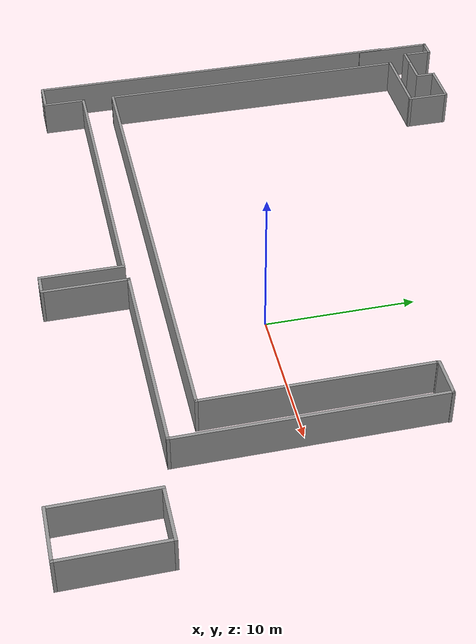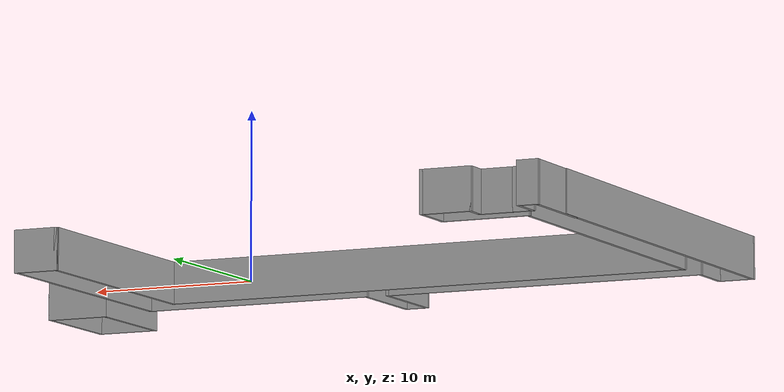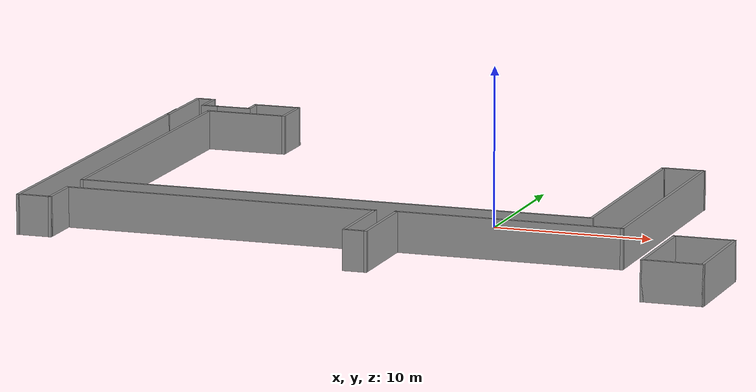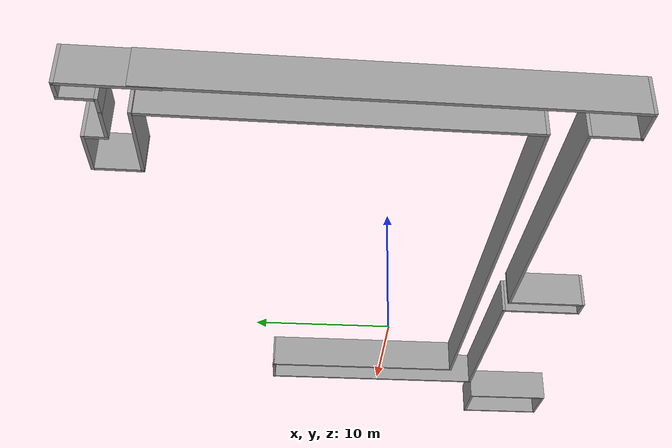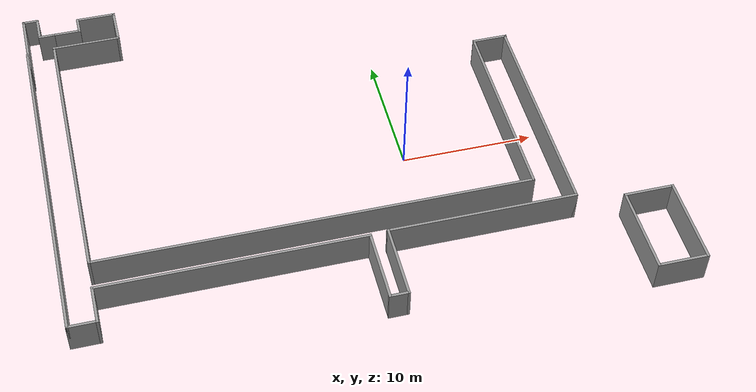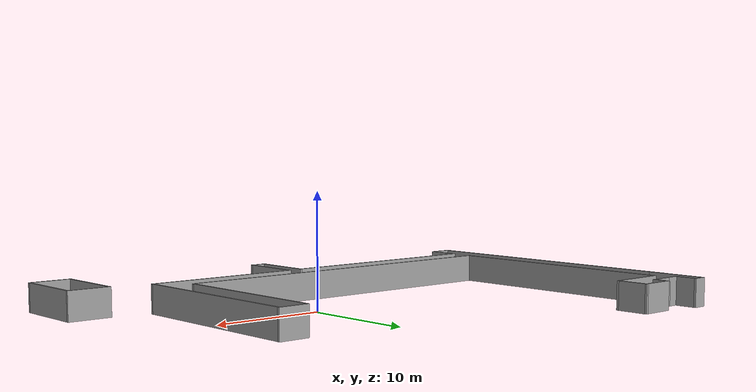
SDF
<?xml version='1.0'?>
<sdf version='1.4'>
  <model name='ESAT_V0.01'>
    <link name='Wall_28'>
      <collision name='Wall_28_Collision'>
        <geometry>
          <box>
            <size>17.173 0.2 2.5</size>
          </box>
        </geometry>
        <pose>0 0 1.25 0 -0 0</pose>
      </collision>
      <visual name='Wall_28_Visual'>
        <pose>0 0 1.25 0 -0 0</pose>
        <geometry>
          <box>
            <size>17.173 0.2 2.5</size>
          </box>
        </geometry>
        <material>
          <script>
            <uri>file://media/materials/scripts/gazebo.material</uri>
            <name>Gazebo/Grey</name>
          </script>
        </material>
      </visual>
      <velocity_decay>
        <linear>0</linear>
        <angular>0</angular>
      </velocity_decay>
      <pose>10.6361 0.271279 0 0 0 -1.5708</pose>
    </link>
    <link name='Wall_29'>
      <collision name='Wall_29_Collision'>
        <geometry>
          <box>
            <size>14.3137 0.2 2.5</size>
          </box>
        </geometry>
        <pose>0 0 1.25 0 -0 0</pose>
      </collision>
      <visual name='Wall_29_Visual'>
        <pose>0 0 1.25 0 -0 0</pose>
        <geometry>
          <box>
            <size>14.3137 0.2 2.5</size>
          </box>
        </geometry>
        <material>
          <script>
            <uri>file://media/materials/scripts/gazebo.material</uri>
            <name>Gazebo/Grey</name>
          </script>
        </material>
      </visual>
      <velocity_decay>
        <linear>0</linear>
        <angular>0</angular>
      </velocity_decay>
      <pose>3.57926 -8.2152 0 0 -0 3.14159</pose>
    </link>
    <link name='Wall_30'>
      <collision name='Wall_30_Collision'>
        <geometry>
          <box>
            <size>0.21 0.2 2.5</size>
          </box>
        </geometry>
        <pose>0 0 1.25 0 -0 0</pose>
      </collision>
      <visual name='Wall_30_Visual'>
        <pose>0 0 1.25 0 -0 0</pose>
        <geometry>
          <box>
            <size>0.21 0.2 2.5</size>
          </box>
        </geometry>
        <material>
          <script>
            <uri>file://media/materials/scripts/gazebo.material</uri>
            <name>Gazebo/Grey</name>
          </script>
        </material>
      </visual>
      <velocity_decay>
        <linear>0</linear>
        <angular>0</angular>
      </velocity_decay>
      <pose>-3.4726 -8.2152 0 0 -0 0</pose>
    </link>
    <link name='Wall_31'>
      <collision name='Wall_31_Collision'>
        <geometry>
          <box>
            <size>5.79682 0.2 2.5</size>
          </box>
        </geometry>
        <pose>0 0 1.25 0 -0 0</pose>
      </collision>
      <visual name='Wall_31_Visual'>
        <pose>0 0 1.25 0 -0 0</pose>
        <geometry>
          <box>
            <size>5.79682 0.2 2.5</size>
          </box>
        </geometry>
        <material>
          <script>
            <uri>file://media/materials/scripts/gazebo.material</uri>
            <name>Gazebo/Grey</name>
          </script>
        </material>
      </visual>
      <velocity_decay>
        <linear>0</linear>
        <angular>0</angular>
      </velocity_decay>
      <pose>-3.4676 -11.0136 0 0 0 -1.5708</pose>
    </link>
    <link name='Wall_32'>
      <collision name='Wall_32_Collision'>
        <geometry>
          <box>
            <size>1.54837 0.2 2.5</size>
          </box>
        </geometry>
        <pose>0 0 1.25 0 -0 0</pose>
      </collision>
      <visual name='Wall_32_Visual'>
        <pose>0 0 1.25 0 -0 0</pose>
        <geometry>
          <box>
            <size>1.54837 0.2 2.5</size>
          </box>
        </geometry>
        <material>
          <script>
            <uri>file://media/materials/scripts/gazebo.material</uri>
            <name>Gazebo/Grey</name>
          </script>
        </material>
      </visual>
      <velocity_decay>
        <linear>0</linear>
        <angular>0</angular>
      </velocity_decay>
      <pose>-4.14178 -13.812 0 0 -0 3.14159</pose>
    </link>
    <link name='Wall_33'>
      <collision name='Wall_33_Collision'>
        <geometry>
          <box>
            <size>5.67515 0.2 2.5</size>
          </box>
        </geometry>
        <pose>0 0 1.25 0 -0 0</pose>
      </collision>
      <visual name='Wall_33_Visual'>
        <pose>0 0 1.25 0 -0 0</pose>
        <geometry>
          <box>
            <size>5.67515 0.2 2.5</size>
          </box>
        </geometry>
        <material>
          <script>
            <uri>file://media/materials/scripts/gazebo.material</uri>
            <name>Gazebo/Grey</name>
          </script>
        </material>
      </visual>
      <velocity_decay>
        <linear>0</linear>
        <angular>0</angular>
      </velocity_decay>
      <pose>-4.81597 -11.0744 0 0 -0 1.5708</pose>
    </link>
    <link name='Wall_34'>
      <collision name='Wall_34_Collision'>
        <geometry>
          <box>
            <size>19.9714 0.2 2.5</size>
          </box>
        </geometry>
        <pose>0 0 1.25 0 -0 0</pose>
      </collision>
      <visual name='Wall_34_Visual'>
        <pose>0 0 1.25 0 -0 0</pose>
        <geometry>
          <box>
            <size>19.9714 0.2 2.5</size>
          </box>
        </geometry>
        <material>
          <script>
            <uri>file://media/materials/scripts/gazebo.material</uri>
            <name>Gazebo/Grey</name>
          </script>
        </material>
      </visual>
      <velocity_decay>
        <linear>0</linear>
        <angular>0</angular>
      </velocity_decay>
      <pose>-14.7017 -8.33687 0 0 -0 3.14159</pose>
    </link>
    <link name='Wall_35'>
      <collision name='Wall_35_Collision'>
        <geometry>
          <box>
            <size>3.05925 0.2 2.5</size>
          </box>
        </geometry>
        <pose>0 0 1.25 0 -0 0</pose>
      </collision>
      <visual name='Wall_35_Visual'>
        <pose>0 0 1.25 0 -0 0</pose>
        <geometry>
          <box>
            <size>3.05925 0.2 2.5</size>
          </box>
        </geometry>
        <material>
          <script>
            <uri>file://media/materials/scripts/gazebo.material</uri>
            <name>Gazebo/Grey</name>
          </script>
        </material>
      </visual>
      <velocity_decay>
        <linear>0</linear>
        <angular>0</angular>
      </velocity_decay>
      <pose>-24.5873 -9.7665 0 0 0 -1.5708</pose>
    </link>
    <link name='Wall_36'>
      <collision name='Wall_36_Collision'>
        <geometry>
          <box>
            <size>2.26839 0.2 2.5</size>
          </box>
        </geometry>
        <pose>0 0 1.25 0 -0 0</pose>
      </collision>
      <visual name='Wall_36_Visual'>
        <pose>0 0 1.25 0 -0 0</pose>
        <geometry>
          <box>
            <size>2.26839 0.2 2.5</size>
          </box>
        </geometry>
        <material>
          <script>
            <uri>file://media/materials/scripts/gazebo.material</uri>
            <name>Gazebo/Grey</name>
          </script>
        </material>
      </visual>
      <velocity_decay>
        <linear>0</linear>
        <angular>0</angular>
      </velocity_decay>
      <pose>-25.6215 -11.1961 0 0 -0 3.14159</pose>
    </link>
    <link name='Wall_37'>
      <collision name='Wall_37_Collision'>
        <geometry>
          <box>
            <size>27.0282 0.2 2.5</size>
          </box>
        </geometry>
        <pose>0 0 1.25 0 -0 0</pose>
      </collision>
      <visual name='Wall_37_Visual'>
        <pose>0 0 1.25 0 -0 0</pose>
        <geometry>
          <box>
            <size>27.0282 0.2 2.5</size>
          </box>
        </geometry>
        <material>
          <script>
            <uri>file://media/materials/scripts/gazebo.material</uri>
            <name>Gazebo/Grey</name>
          </script>
        </material>
      </visual>
      <velocity_decay>
        <linear>0</linear>
        <angular>0</angular>
      </velocity_decay>
      <pose>-26.6557 2.218 0 0 -0 1.5708</pose>
    </link>
    <link name='Wall_39'>
      <collision name='Wall_39_Collision'>
        <geometry>
          <box>
            <size>14.9829 0.2 2.5</size>
          </box>
        </geometry>
        <pose>0 0 1.25 0 -0 0</pose>
      </collision>
      <visual name='Wall_39_Visual'>
        <pose>0 0 1.25 0 -0 0</pose>
        <geometry>
          <box>
            <size>14.9829 0.2 2.5</size>
          </box>
        </geometry>
        <material>
          <script>
            <uri>file://media/materials/scripts/gazebo.material</uri>
            <name>Gazebo/Grey</name>
          </script>
        </material>
      </visual>
      <velocity_decay>
        <linear>0</linear>
        <angular>0</angular>
      </velocity_decay>
      <pose>8.08105 1.30547 0 0 0 -1.5708</pose>
    </link>
    <link name='Wall_40'>
      <collision name='Wall_40_Collision'>
        <geometry>
          <box>
            <size>32.8076 0.2 2.5</size>
          </box>
        </geometry>
        <pose>0 0 1.25 0 -0 0</pose>
      </collision>
      <visual name='Wall_40_Visual'>
        <pose>0 0 1.25 0 -0 0</pose>
        <geometry>
          <box>
            <size>32.8076 0.2 2.5</size>
          </box>
        </geometry>
        <material>
          <script>
            <uri>file://media/materials/scripts/gazebo.material</uri>
            <name>Gazebo/Grey</name>
          </script>
        </material>
      </visual>
      <velocity_decay>
        <linear>0</linear>
        <angular>0</angular>
      </velocity_decay>
      <pose>-8.22273 -6.08598 0 0 -0 3.14159</pose>
    </link>
    <link name='Wall_41'>
      <collision name='Wall_41_Collision'>
        <geometry>
          <box>
            <size>21.9181 0.2 2.5</size>
          </box>
        </geometry>
        <pose>0 0 1.25 0 -0 0</pose>
      </collision>
      <visual name='Wall_41_Visual'>
        <pose>0 0 1.25 0 -0 0</pose>
        <geometry>
          <box>
            <size>21.9181 0.2 2.5</size>
          </box>
        </geometry>
        <material>
          <script>
            <uri>file://media/materials/scripts/gazebo.material</uri>
            <name>Gazebo/Grey</name>
          </script>
        </material>
      </visual>
      <velocity_decay>
        <linear>0</linear>
        <angular>0</angular>
      </velocity_decay>
      <pose>-24.5265 4.77307 0 0 -0 1.5708</pose>
    </link>
    <link name='Wall_46'>
      <collision name='Wall_46_Collision'>
        <geometry>
          <box>
            <size>5.31014 0.2 2.5</size>
          </box>
        </geometry>
        <pose>0 0 1.25 0 -0 0</pose>
      </collision>
      <visual name='Wall_46_Visual'>
        <pose>0 0 1.25 0 -0 0</pose>
        <geometry>
          <box>
            <size>5.31014 0.2 2.5</size>
          </box>
        </geometry>
        <material>
          <script>
            <uri>file://media/materials/scripts/gazebo.material</uri>
            <name>Gazebo/Grey</name>
          </script>
        </material>
      </visual>
      <velocity_decay>
        <linear>0</linear>
        <angular>0</angular>
      </velocity_decay>
      <pose>-21.9714 15.8755 0 0 -0 0</pose>
    </link>
    <link name='Wall_47'>
      <collision name='Wall_47_Collision'>
        <geometry>
          <box>
            <size>2.99841 0.2 2.5</size>
          </box>
        </geometry>
        <pose>0 0 1.25 0 -0 0</pose>
      </collision>
      <visual name='Wall_47_Visual'>
        <pose>0 0 1.25 0 -0 0</pose>
        <geometry>
          <box>
            <size>2.99841 0.2 2.5</size>
          </box>
        </geometry>
        <material>
          <script>
            <uri>file://media/materials/scripts/gazebo.material</uri>
            <name>Gazebo/Grey</name>
          </script>
        </material>
      </visual>
      <velocity_decay>
        <linear>0</linear>
        <angular>0</angular>
      </velocity_decay>
      <pose>-19.4164 17.2747 0 0 -0 1.5708</pose>
    </link>
    <link name='Wall_48'>
      <collision name='Wall_48_Collision'>
        <geometry>
          <box>
            <size>3.12008 0.2 2.5</size>
          </box>
        </geometry>
        <pose>0 0 1.25 0 -0 0</pose>
      </collision>
      <visual name='Wall_48_Visual'>
        <pose>0 0 1.25 0 -0 0</pose>
        <geometry>
          <box>
            <size>3.12008 0.2 2.5</size>
          </box>
        </geometry>
        <material>
          <script>
            <uri>file://media/materials/scripts/gazebo.material</uri>
            <name>Gazebo/Grey</name>
          </script>
        </material>
      </visual>
      <velocity_decay>
        <linear>0</linear>
        <angular>0</angular>
      </velocity_decay>
      <pose>-20.8764 18.6739 0 0 -0 3.14159</pose>
    </link>
    <link name='Wall_49'>
      <collision name='Wall_49_Collision'>
        <geometry>
          <box>
            <size>1.47754 0.2 2.5</size>
          </box>
        </geometry>
        <pose>0 0 1.25 0 -0 0</pose>
      </collision>
      <visual name='Wall_49_Visual'>
        <pose>0 0 1.25 0 -0 0</pose>
        <geometry>
          <box>
            <size>1.47754 0.2 2.5</size>
          </box>
        </geometry>
        <material>
          <script>
            <uri>file://media/materials/scripts/gazebo.material</uri>
            <name>Gazebo/Grey</name>
          </script>
        </material>
      </visual>
      <velocity_decay>
        <linear>0</linear>
        <angular>0</angular>
      </velocity_decay>
      <pose>-22.3364 18.0351 0 0 0 -1.5708</pose>
    </link>
    <link name='Wall_50'>
      <collision name='Wall_50_Collision'>
        <geometry>
          <box>
            <size>2.26839 0.2 2.5</size>
          </box>
        </geometry>
        <pose>0 0 1.25 0 -0 0</pose>
      </collision>
      <visual name='Wall_50_Visual'>
        <pose>0 0 1.25 0 -0 0</pose>
        <geometry>
          <box>
            <size>2.26839 0.2 2.5</size>
          </box>
        </geometry>
        <material>
          <script>
            <uri>file://media/materials/scripts/gazebo.material</uri>
            <name>Gazebo/Grey</name>
          </script>
        </material>
      </visual>
      <velocity_decay>
        <linear>0</linear>
        <angular>0</angular>
      </velocity_decay>
      <pose>-23.3706 17.3963 0 0 -0 3.14159</pose>
    </link>
    <link name='Wall_51'>
      <collision name='Wall_51_Collision'>
        <geometry>
          <box>
            <size>1.29503 0.2 2.5</size>
          </box>
        </geometry>
        <pose>0 0 1.25 0 -0 0</pose>
      </collision>
      <visual name='Wall_51_Visual'>
        <pose>0 0 1.25 0 -0 0</pose>
        <geometry>
          <box>
            <size>1.29503 0.2 2.5</size>
          </box>
        </geometry>
        <material>
          <script>
            <uri>file://media/materials/scripts/gazebo.material</uri>
            <name>Gazebo/Grey</name>
          </script>
        </material>
      </visual>
      <velocity_decay>
        <linear>0</linear>
        <angular>0</angular>
      </velocity_decay>
      <pose>-24.9524 17.3963 0 0 -0 3.14159</pose>
    </link>
    <link name='Wall_52'>
      <collision name='Wall_52_Collision'>
        <geometry>
          <box>
            <size>2.14672 0.2 2.5</size>
          </box>
        </geometry>
        <pose>0 0 1.25 0 -0 0</pose>
      </collision>
      <visual name='Wall_52_Visual'>
        <pose>0 0 1.25 0 -0 0</pose>
        <geometry>
          <box>
            <size>2.14672 0.2 2.5</size>
          </box>
        </geometry>
        <material>
          <script>
            <uri>file://media/materials/scripts/gazebo.material</uri>
            <name>Gazebo/Grey</name>
          </script>
        </material>
      </visual>
      <velocity_decay>
        <linear>0</linear>
        <angular>0</angular>
      </velocity_decay>
      <pose>-25.4999 18.3697 0 0 -0 1.5708</pose>
    </link>
    <link name='Wall_53'>
      <collision name='Wall_53_Collision'>
        <geometry>
          <box>
            <size>1.29503 0.2 2.5</size>
          </box>
        </geometry>
        <pose>0 0 1.25 0 -0 0</pose>
      </collision>
      <visual name='Wall_53_Visual'>
        <pose>0 0 1.25 0 -0 0</pose>
        <geometry>
          <box>
            <size>1.29503 0.2 2.5</size>
          </box>
        </geometry>
        <material>
          <script>
            <uri>file://media/materials/scripts/gazebo.material</uri>
            <name>Gazebo/Grey</name>
          </script>
        </material>
      </visual>
      <velocity_decay>
        <linear>0</linear>
        <angular>0</angular>
      </velocity_decay>
      <pose>-26.0474 19.3431 0 0 -0 3.14159</pose>
    </link>
    <link name='Wall_54'>
      <collision name='Wall_54_Collision'>
        <geometry>
          <box>
            <size>5.49265 0.2 2.5</size>
          </box>
        </geometry>
        <pose>0 0 1.25 0 -0 0</pose>
      </collision>
      <visual name='Wall_54_Visual'>
        <pose>0 0 1.25 0 -0 0</pose>
        <geometry>
          <box>
            <size>5.49265 0.2 2.5</size>
          </box>
        </geometry>
        <material>
          <script>
            <uri>file://media/materials/scripts/gazebo.material</uri>
            <name>Gazebo/Grey</name>
          </script>
        </material>
      </visual>
      <velocity_decay>
        <linear>0</linear>
        <angular>0</angular>
      </velocity_decay>
      <pose>-26.5949 16.6967 0 0 0 -1.5708</pose>
    </link>
    <link name='Wall_56'>
      <collision name='Wall_56_Collision'>
        <geometry>
          <box>
            <size>6.77018 0.2 2.5</size>
          </box>
        </geometry>
        <pose>0 0 1.25 0 -0 0</pose>
      </collision>
      <visual name='Wall_56_Visual'>
        <pose>0 0 1.25 0 -0 0</pose>
        <geometry>
          <box>
            <size>6.77018 0.2 2.5</size>
          </box>
        </geometry>
        <material>
          <script>
            <uri>file://media/materials/scripts/gazebo.material</uri>
            <name>Gazebo/Grey</name>
          </script>
        </material>
      </visual>
      <velocity_decay>
        <linear>0</linear>
        <angular>0</angular>
      </velocity_decay>
      <pose>14.1037 -12.352 0 0 0 -1.5708</pose>
    </link>
    <link name='Wall_57'>
      <collision name='Wall_57_Collision'>
        <geometry>
          <box>
            <size>3.8501 0.2 2.5</size>
          </box>
        </geometry>
        <pose>0 0 1.25 0 -0 0</pose>
      </collision>
      <visual name='Wall_57_Visual'>
        <pose>0 0 1.25 0 -0 0</pose>
        <geometry>
          <box>
            <size>3.8501 0.2 2.5</size>
          </box>
        </geometry>
        <material>
          <script>
            <uri>file://media/materials/scripts/gazebo.material</uri>
            <name>Gazebo/Grey</name>
          </script>
        </material>
      </visual>
      <velocity_decay>
        <linear>0</linear>
        <angular>0</angular>
      </velocity_decay>
      <pose>15.9288 -15.6371 0 0 -0 0</pose>
    </link>
    <link name='Wall_58'>
      <collision name='Wall_58_Collision'>
        <geometry>
          <box>
            <size>6.77018 0.2 2.5</size>
          </box>
        </geometry>
        <pose>0 0 1.25 0 -0 0</pose>
      </collision>
      <visual name='Wall_58_Visual'>
        <pose>0 0 1.25 0 -0 0</pose>
        <geometry>
          <box>
            <size>6.77018 0.2 2.5</size>
          </box>
        </geometry>
        <material>
          <script>
            <uri>file://media/materials/scripts/gazebo.material</uri>
            <name>Gazebo/Grey</name>
          </script>
        </material>
      </visual>
      <velocity_decay>
        <linear>0</linear>
        <angular>0</angular>
      </velocity_decay>
      <pose>17.7538 -12.352 0 0 -0 1.5708</pose>
    </link>
    <link name='Wall_59'>
      <collision name='Wall_59_Collision'>
        <geometry>
          <box>
            <size>3.8501 0.2 2.5</size>
          </box>
        </geometry>
        <pose>0 0 1.25 0 -0 0</pose>
      </collision>
      <visual name='Wall_59_Visual'>
        <pose>0 0 1.25 0 -0 0</pose>
        <geometry>
          <box>
            <size>3.8501 0.2 2.5</size>
          </box>
        </geometry>
        <material>
          <script>
            <uri>file://media/materials/scripts/gazebo.material</uri>
            <name>Gazebo/Grey</name>
          </script>
        </material>
      </visual>
      <velocity_decay>
        <linear>0</linear>
        <angular>0</angular>
      </velocity_decay>
      <pose>15.9288 -9.06689 0 0 -0 3.14159</pose>
    </link>
    <link name='Wall_61'>
      <collision name='Wall_61_Collision'>
        <geometry>
          <box>
            <size>2.76 0.2 2.5</size>
          </box>
        </geometry>
        <pose>0 0 1.25 0 -0 0</pose>
      </collision>
      <visual name='Wall_61_Visual'>
        <pose>0 0 1.25 0 -0 0</pose>
        <geometry>
          <box>
            <size>2.76 0.2 2.5</size>
          </box>
        </geometry>
        <material>
          <script>
            <uri>file://media/materials/scripts/gazebo.material</uri>
            <name>Gazebo/Grey</name>
          </script>
        </material>
      </visual>
      <velocity_decay>
        <linear>0</linear>
        <angular>0</angular>
      </velocity_decay>
      <pose>9.3987 8.8145 0 0 -0 3.14159</pose>
    </link>
    <link name='Wall_62'>
      <collision name='Wall_62_Collision'>
        <geometry>
          <box>
            <size>0.28 0.2 2.5</size>
          </box>
        </geometry>
        <pose>0 0 1.25 0 -0 0</pose>
      </collision>
      <visual name='Wall_62_Visual'>
        <pose>0 0 1.25 0 -0 0</pose>
        <geometry>
          <box>
            <size>0.28 0.2 2.5</size>
          </box>
        </geometry>
        <material>
          <script>
            <uri>file://media/materials/scripts/gazebo.material</uri>
            <name>Gazebo/Grey</name>
          </script>
        </material>
      </visual>
      <velocity_decay>
        <linear>0</linear>
        <angular>0</angular>
      </velocity_decay>
      <pose>8.1187 8.7745 0 0 0 -1.5708</pose>
    </link>
    <static>1</static>
  </model>
</sdf>
